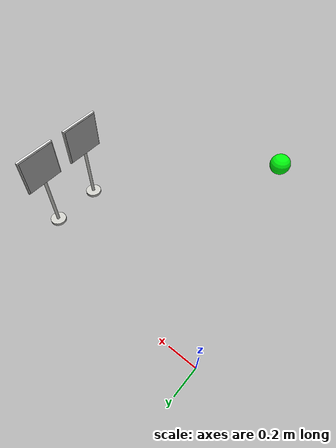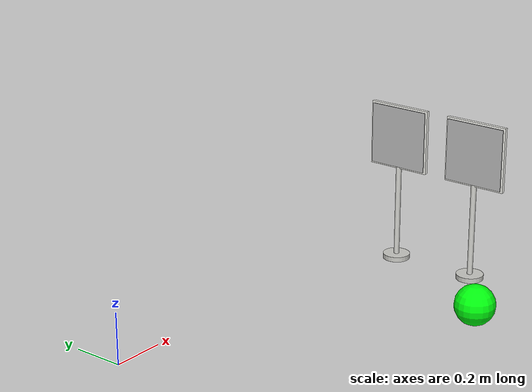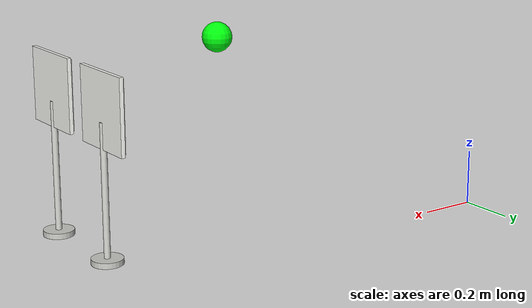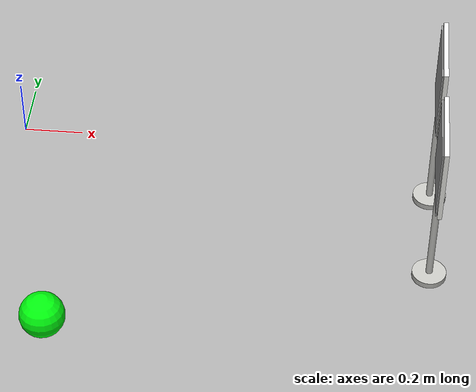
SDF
<sdf version="1.7">
 <world name="autonomous_map_3d_world">
  <model name="traffic_light_lower_island_green_active_lamp">
   <static>0</static>
   <link name="lamp_link">
    <gravity>0</gravity>
    <visual name="lamp_visual">
     <geometry><sphere><radius>0.065</radius></sphere></geometry>
     <material>
      <ambient>0 1 0.05 1</ambient>
      <diffuse>0 1 0.05 1</diffuse>
      <emissive>0 0.0313726 0.3 1</emissive>
     </material>
    </visual>
    <kinematic>1</kinematic>
    <inertial>
     <inertia><ixx>1</ixx><ixy>0</ixy><ixz>0</ixz><iyy>1</iyy><iyz>0</iyz><izz>1</izz></inertia>
     <mass>1</mass>
    </inertial>
   </link>
   <pose>0.308200 -1.237500 0.470000 0.000000 -0.000000 3.141593</pose>
  </model>
  <model name="sign_speed_limit_left_island">
   <static>1</static>
   <link name="sign_link">
    <visual name="base_visual">
     <pose>0 0 0.01 0 -0 0</pose>
     <geometry><cylinder><radius>0.055</radius><length>0.02</length></cylinder></geometry>
     <material><ambient>0.72 0.72 0.7 1</ambient><diffuse>0.78 0.78 0.76 1</diffuse></material>
    </visual>
    <visual name="pole_visual">
     <pose>0 0 0.245 0 -0 0</pose>
     <geometry><cylinder><radius>0.011</radius><length>0.47</length></cylinder></geometry>
     <material><ambient>0.72 0.72 0.7 1</ambient><diffuse>0.82 0.82 0.8 1</diffuse></material>
    </visual>
    <visual name="back_plate_visual">
     <pose>0 0 0.52 0 -0 0</pose>
     <geometry><box><size>0.26 0.014 0.26</size></box></geometry>
     <material><ambient>0.96 0.96 0.94 1</ambient><diffuse>0.98 0.98 0.96 1</diffuse></material>
    </visual>
    <visual name="sign_face_visual">
     <pose>0 -0.011 0.52 0 -0 0</pose>
     <geometry><box><size>0.246 0.004 0.246</size></box></geometry>
     <material>
      <script>
       <uri>model://road_sign_speed_limit/materials/scripts</uri>
       <uri>model://road_sign_speed_limit/materials/textures</uri>
       <name>RoadSign/SpeedLimit</name>
      </script>
     </material>
    </visual>
   </link>
   <pose>1.406200 -0.567200 0.000000 0.000000 0.000000 -1.570793</pose>
  </model>
  <model name="sign_turn_left_lower_left_island">
   <static>1</static>
   <link name="sign_link">
    <visual name="base_visual">
     <pose>0 0 0.01 0 -0 0</pose>
     <geometry><cylinder><radius>0.055</radius><length>0.02</length></cylinder></geometry>
     <material><ambient>0.72 0.72 0.7 1</ambient><diffuse>0.78 0.78 0.76 1</diffuse></material>
    </visual>
    <visual name="pole_visual">
     <pose>0 0 0.245 0 -0 0</pose>
     <geometry><cylinder><radius>0.011</radius><length>0.47</length></cylinder></geometry>
     <material><ambient>0.72 0.72 0.7 1</ambient><diffuse>0.82 0.82 0.8 1</diffuse></material>
    </visual>
    <visual name="back_plate_visual">
     <pose>0 0 0.52 0 -0 0</pose>
     <geometry><box><size>0.26 0.014 0.26</size></box></geometry>
     <material><ambient>0.96 0.96 0.94 1</ambient><diffuse>0.98 0.98 0.96 1</diffuse></material>
    </visual>
    <visual name="sign_face_visual">
     <pose>0 -0.011 0.52 0 -0 0</pose>
     <geometry><box><size>0.246 0.004 0.246</size></box></geometry>
     <material>
      <script>
       <uri>model://road_sign_turn_left/materials/scripts</uri>
       <uri>model://road_sign_turn_left/materials/textures</uri>
       <name>RoadSign/TurnLeft</name>
      </script>
     </material>
    </visual>
   </link>
   <pose>1.406200 -0.215600 0.000000 0.000000 0.000000 -1.570793</pose>
  </model>
 </world>
</sdf>
